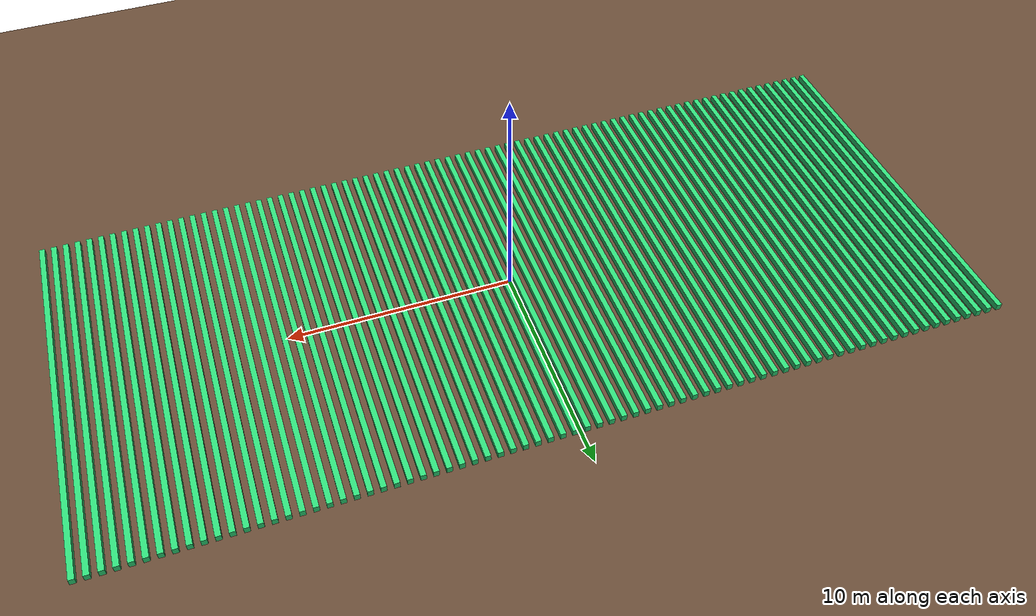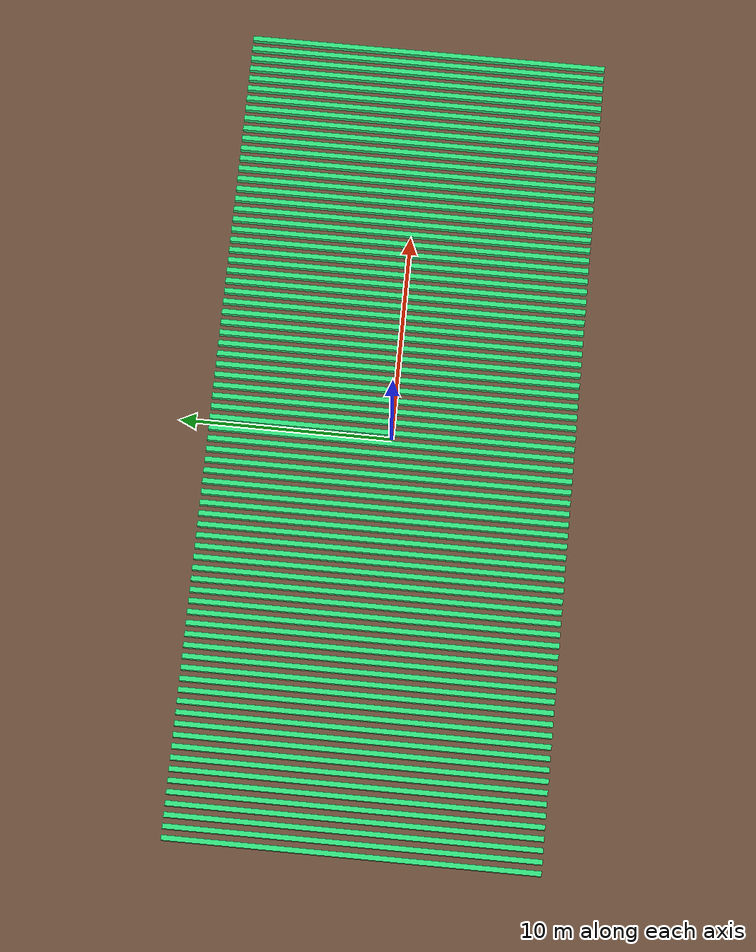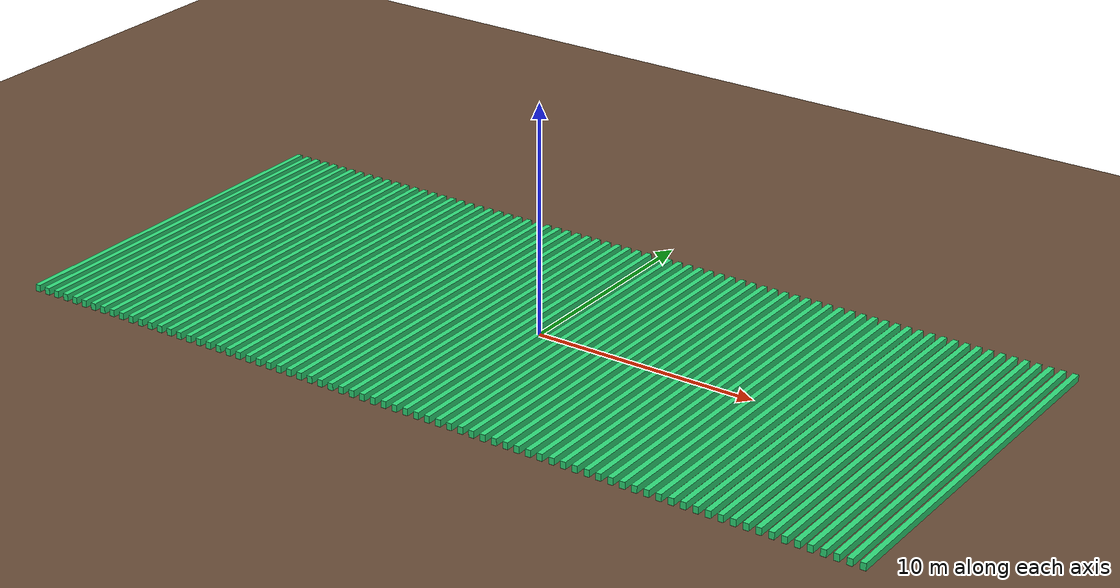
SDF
<sdf version="1.6">
 <world name="field">
  <light name="sun" type="directional">
   <pose>0 0 10 0 0 0</pose>
   <diffuse>0.8 0.8 0.8 1</diffuse>
   <specular>0.2 0.2 0.2 1</specular>
   <attenuation>
    <range>1000</range>
    <constant>0.9</constant>
    <linear>0.01</linear>
    <quadratic>0.001</quadratic>
   </attenuation>
   <direction>-0.5 0.1 -0.9</direction>
  </light>
  <gravity>0 0 -9.8</gravity>
  <magnetic_field>6e-06 2.3e-05 -4.2e-05</magnetic_field>
  <atmosphere type="adiabatic"/>
  <physics name="default_physics" default="0" type="ode">
   <max_step_size>0.001</max_step_size>
   <real_time_factor>1</real_time_factor>
   <real_time_update_rate>1000</real_time_update_rate>
  </physics>
  <scene><ambient>0.4 0.4 0.4 1</ambient><background>0.7 0.7 0.7 1</background><shadows>1</shadows></scene>
  <spherical_coordinates>
   <surface_model>EARTH_WGS84</surface_model>
   <latitude_deg>0</latitude_deg>
   <longitude_deg>0</longitude_deg>
   <elevation>0</elevation>
   <heading_deg>0</heading_deg>
  </spherical_coordinates>
  <model name="ground_plane">
   <static>1</static>
   <link name="ground_plane">
    <collision name="collision">
     <geometry><plane><normal>0 0 1</normal><size>42 35</size></plane></geometry>
     <surface><friction><ode><mu>100</mu><mu2>50</mu2></ode></friction></surface>
    </collision>
    <visual name="visual">
     <pose>0.00 0.00 0.02 0.00 0.00 0.00</pose>
     <cast_shadows>0</cast_shadows>
     <geometry><plane><normal>0 0 1</normal><size>42 35</size></plane></geometry>
     <material>
      <ambient>0.40 0.29 0.21 1.00</ambient>
      <diffuse>0.40 0.29 0.21 1.00</diffuse>
      <specular>0.01 0.01 0.01 1</specular>
      <emissive>0 0 0 1</emissive>
     </material>
    </visual>
   </link>
  </model>
  <model name="crop1">
   <pose>-19.50 0.00 0.15 0.00 0.00 0.00</pose>
   <link name="crop_line">
    <visual name="visual">
     <geometry><box><size>0.24 17.20 0.30</size></box></geometry>
     <material>
      <ambient>0.13 0.60 0.33 1.00</ambient>
      <diffuse>0.18 0.85 0.47 1.00</diffuse>
      <specular>0.01 0.01 0.01 1</specular>
      <emissive>0 0 0 1</emissive>
     </material>
    </visual>
    <collision name="collision">
     <geometry><box><size>0.24 17.20 0.30</size></box></geometry>
     <surface><contact><collide_without_contact>true</collide_without_contact></contact></surface>
    </collision>
   </link>
   <static>1</static>
  </model>
  <model name="crop2">
   <pose>-18.98 0.00 0.15 0.00 0.00 0.00</pose>
   <link name="crop_line">
    <visual name="visual">
     <geometry><box><size>0.24 17.20 0.30</size></box></geometry>
     <material>
      <ambient>0.13 0.60 0.33 1.00</ambient>
      <diffuse>0.18 0.85 0.47 1.00</diffuse>
      <specular>0.01 0.01 0.01 1</specular>
      <emissive>0 0 0 1</emissive>
     </material>
    </visual>
    <collision name="collision">
     <geometry><box><size>0.24 17.20 0.30</size></box></geometry>
     <surface><contact><collide_without_contact>true</collide_without_contact></contact></surface>
    </collision>
   </link>
   <static>1</static>
  </model>
  <model name="crop3">
   <pose>-18.46 0.00 0.15 0.00 0.00 0.00</pose>
   <link name="crop_line">
    <visual name="visual">
     <geometry><box><size>0.24 17.20 0.30</size></box></geometry>
     <material>
      <ambient>0.13 0.60 0.33 1.00</ambient>
      <diffuse>0.18 0.85 0.47 1.00</diffuse>
      <specular>0.01 0.01 0.01 1</specular>
      <emissive>0 0 0 1</emissive>
     </material>
    </visual>
    <collision name="collision">
     <geometry><box><size>0.24 17.20 0.30</size></box></geometry>
     <surface><contact><collide_without_contact>true</collide_without_contact></contact></surface>
    </collision>
   </link>
   <static>1</static>
  </model>
  <model name="crop4">
   <pose>-17.94 0.00 0.15 0.00 0.00 0.00</pose>
   <link name="crop_line">
    <visual name="visual">
     <geometry><box><size>0.24 17.20 0.30</size></box></geometry>
     <material>
      <ambient>0.13 0.60 0.33 1.00</ambient>
      <diffuse>0.18 0.85 0.47 1.00</diffuse>
      <specular>0.01 0.01 0.01 1</specular>
      <emissive>0 0 0 1</emissive>
     </material>
    </visual>
    <collision name="collision">
     <geometry><box><size>0.24 17.20 0.30</size></box></geometry>
     <surface><contact><collide_without_contact>true</collide_without_contact></contact></surface>
    </collision>
   </link>
   <static>1</static>
  </model>
  <model name="crop5">
   <pose>-17.42 0.00 0.15 0.00 0.00 0.00</pose>
   <link name="crop_line">
    <visual name="visual">
     <geometry><box><size>0.24 17.20 0.30</size></box></geometry>
     <material>
      <ambient>0.13 0.60 0.33 1.00</ambient>
      <diffuse>0.18 0.85 0.47 1.00</diffuse>
      <specular>0.01 0.01 0.01 1</specular>
      <emissive>0 0 0 1</emissive>
     </material>
    </visual>
    <collision name="collision">
     <geometry><box><size>0.24 17.20 0.30</size></box></geometry>
     <surface><contact><collide_without_contact>true</collide_without_contact></contact></surface>
    </collision>
   </link>
   <static>1</static>
  </model>
  <model name="crop6">
   <pose>-16.90 0.00 0.15 0.00 0.00 0.00</pose>
   <link name="crop_line">
    <visual name="visual">
     <geometry><box><size>0.24 17.20 0.30</size></box></geometry>
     <material>
      <ambient>0.13 0.60 0.33 1.00</ambient>
      <diffuse>0.18 0.85 0.47 1.00</diffuse>
      <specular>0.01 0.01 0.01 1</specular>
      <emissive>0 0 0 1</emissive>
     </material>
    </visual>
    <collision name="collision">
     <geometry><box><size>0.24 17.20 0.30</size></box></geometry>
     <surface><contact><collide_without_contact>true</collide_without_contact></contact></surface>
    </collision>
   </link>
   <static>1</static>
  </model>
  <model name="crop7">
   <pose>-16.38 0.00 0.15 0.00 0.00 0.00</pose>
   <link name="crop_line">
    <visual name="visual">
     <geometry><box><size>0.24 17.20 0.30</size></box></geometry>
     <material>
      <ambient>0.13 0.60 0.33 1.00</ambient>
      <diffuse>0.18 0.85 0.47 1.00</diffuse>
      <specular>0.01 0.01 0.01 1</specular>
      <emissive>0 0 0 1</emissive>
     </material>
    </visual>
    <collision name="collision">
     <geometry><box><size>0.24 17.20 0.30</size></box></geometry>
     <surface><contact><collide_without_contact>true</collide_without_contact></contact></surface>
    </collision>
   </link>
   <static>1</static>
  </model>
  <model name="crop8">
   <pose>-15.86 0.00 0.15 0.00 0.00 0.00</pose>
   <link name="crop_line">
    <visual name="visual">
     <geometry><box><size>0.24 17.20 0.30</size></box></geometry>
     <material>
      <ambient>0.13 0.60 0.33 1.00</ambient>
      <diffuse>0.18 0.85 0.47 1.00</diffuse>
      <specular>0.01 0.01 0.01 1</specular>
      <emissive>0 0 0 1</emissive>
     </material>
    </visual>
    <collision name="collision">
     <geometry><box><size>0.24 17.20 0.30</size></box></geometry>
     <surface><contact><collide_without_contact>true</collide_without_contact></contact></surface>
    </collision>
   </link>
   <static>1</static>
  </model>
  <model name="crop9">
   <pose>-15.34 0.00 0.15 0.00 0.00 0.00</pose>
   <link name="crop_line">
    <visual name="visual">
     <geometry><box><size>0.24 17.20 0.30</size></box></geometry>
     <material>
      <ambient>0.13 0.60 0.33 1.00</ambient>
      <diffuse>0.18 0.85 0.47 1.00</diffuse>
      <specular>0.01 0.01 0.01 1</specular>
      <emissive>0 0 0 1</emissive>
     </material>
    </visual>
    <collision name="collision">
     <geometry><box><size>0.24 17.20 0.30</size></box></geometry>
     <surface><contact><collide_without_contact>true</collide_without_contact></contact></surface>
    </collision>
   </link>
   <static>1</static>
  </model>
  <model name="crop10">
   <pose>-14.82 0.00 0.15 0.00 0.00 0.00</pose>
   <link name="crop_line">
    <visual name="visual">
     <geometry><box><size>0.24 17.20 0.30</size></box></geometry>
     <material>
      <ambient>0.13 0.60 0.33 1.00</ambient>
      <diffuse>0.18 0.85 0.47 1.00</diffuse>
      <specular>0.01 0.01 0.01 1</specular>
      <emissive>0 0 0 1</emissive>
     </material>
    </visual>
    <collision name="collision">
     <geometry><box><size>0.24 17.20 0.30</size></box></geometry>
     <surface><contact><collide_without_contact>true</collide_without_contact></contact></surface>
    </collision>
   </link>
   <static>1</static>
  </model>
  <model name="crop11">
   <pose>-14.30 0.00 0.15 0.00 0.00 0.00</pose>
   <link name="crop_line">
    <visual name="visual">
     <geometry><box><size>0.24 17.20 0.30</size></box></geometry>
     <material>
      <ambient>0.13 0.60 0.33 1.00</ambient>
      <diffuse>0.18 0.85 0.47 1.00</diffuse>
      <specular>0.01 0.01 0.01 1</specular>
      <emissive>0 0 0 1</emissive>
     </material>
    </visual>
    <collision name="collision">
     <geometry><box><size>0.24 17.20 0.30</size></box></geometry>
     <surface><contact><collide_without_contact>true</collide_without_contact></contact></surface>
    </collision>
   </link>
   <static>1</static>
  </model>
  <model name="crop12">
   <pose>-13.78 0.00 0.15 0.00 0.00 0.00</pose>
   <link name="crop_line">
    <visual name="visual">
     <geometry><box><size>0.24 17.20 0.30</size></box></geometry>
     <material>
      <ambient>0.13 0.60 0.33 1.00</ambient>
      <diffuse>0.18 0.85 0.47 1.00</diffuse>
      <specular>0.01 0.01 0.01 1</specular>
      <emissive>0 0 0 1</emissive>
     </material>
    </visual>
    <collision name="collision">
     <geometry><box><size>0.24 17.20 0.30</size></box></geometry>
     <surface><contact><collide_without_contact>true</collide_without_contact></contact></surface>
    </collision>
   </link>
   <static>1</static>
  </model>
  <model name="crop13">
   <pose>-13.26 0.00 0.15 0.00 0.00 0.00</pose>
   <link name="crop_line">
    <visual name="visual">
     <geometry><box><size>0.24 17.20 0.30</size></box></geometry>
     <material>
      <ambient>0.13 0.60 0.33 1.00</ambient>
      <diffuse>0.18 0.85 0.47 1.00</diffuse>
      <specular>0.01 0.01 0.01 1</specular>
      <emissive>0 0 0 1</emissive>
     </material>
    </visual>
    <collision name="collision">
     <geometry><box><size>0.24 17.20 0.30</size></box></geometry>
     <surface><contact><collide_without_contact>true</collide_without_contact></contact></surface>
    </collision>
   </link>
   <static>1</static>
  </model>
  <model name="crop14">
   <pose>-12.74 0.00 0.15 0.00 0.00 0.00</pose>
   <link name="crop_line">
    <visual name="visual">
     <geometry><box><size>0.24 17.20 0.30</size></box></geometry>
     <material>
      <ambient>0.13 0.60 0.33 1.00</ambient>
      <diffuse>0.18 0.85 0.47 1.00</diffuse>
      <specular>0.01 0.01 0.01 1</specular>
      <emissive>0 0 0 1</emissive>
     </material>
    </visual>
    <collision name="collision">
     <geometry><box><size>0.24 17.20 0.30</size></box></geometry>
     <surface><contact><collide_without_contact>true</collide_without_contact></contact></surface>
    </collision>
   </link>
   <static>1</static>
  </model>
  <model name="crop15">
   <pose>-12.22 0.00 0.15 0.00 0.00 0.00</pose>
   <link name="crop_line">
    <visual name="visual">
     <geometry><box><size>0.24 17.20 0.30</size></box></geometry>
     <material>
      <ambient>0.13 0.60 0.33 1.00</ambient>
      <diffuse>0.18 0.85 0.47 1.00</diffuse>
      <specular>0.01 0.01 0.01 1</specular>
      <emissive>0 0 0 1</emissive>
     </material>
    </visual>
    <collision name="collision">
     <geometry><box><size>0.24 17.20 0.30</size></box></geometry>
     <surface><contact><collide_without_contact>true</collide_without_contact></contact></surface>
    </collision>
   </link>
   <static>1</static>
  </model>
  <model name="crop16">
   <pose>-11.70 0.00 0.15 0.00 0.00 0.00</pose>
   <link name="crop_line">
    <visual name="visual">
     <geometry><box><size>0.24 17.20 0.30</size></box></geometry>
     <material>
      <ambient>0.13 0.60 0.33 1.00</ambient>
      <diffuse>0.18 0.85 0.47 1.00</diffuse>
      <specular>0.01 0.01 0.01 1</specular>
      <emissive>0 0 0 1</emissive>
     </material>
    </visual>
    <collision name="collision">
     <geometry><box><size>0.24 17.20 0.30</size></box></geometry>
     <surface><contact><collide_without_contact>true</collide_without_contact></contact></surface>
    </collision>
   </link>
   <static>1</static>
  </model>
  <model name="crop17">
   <pose>-11.18 0.00 0.15 0.00 0.00 0.00</pose>
   <link name="crop_line">
    <visual name="visual">
     <geometry><box><size>0.24 17.20 0.30</size></box></geometry>
     <material>
      <ambient>0.13 0.60 0.33 1.00</ambient>
      <diffuse>0.18 0.85 0.47 1.00</diffuse>
      <specular>0.01 0.01 0.01 1</specular>
      <emissive>0 0 0 1</emissive>
     </material>
    </visual>
    <collision name="collision">
     <geometry><box><size>0.24 17.20 0.30</size></box></geometry>
     <surface><contact><collide_without_contact>true</collide_without_contact></contact></surface>
    </collision>
   </link>
   <static>1</static>
  </model>
  <model name="crop18">
   <pose>-10.66 0.00 0.15 0.00 0.00 0.00</pose>
   <link name="crop_line">
    <visual name="visual">
     <geometry><box><size>0.24 17.20 0.30</size></box></geometry>
     <material>
      <ambient>0.13 0.60 0.33 1.00</ambient>
      <diffuse>0.18 0.85 0.47 1.00</diffuse>
      <specular>0.01 0.01 0.01 1</specular>
      <emissive>0 0 0 1</emissive>
     </material>
    </visual>
    <collision name="collision">
     <geometry><box><size>0.24 17.20 0.30</size></box></geometry>
     <surface><contact><collide_without_contact>true</collide_without_contact></contact></surface>
    </collision>
   </link>
   <static>1</static>
  </model>
  <model name="crop19">
   <pose>-10.14 0.00 0.15 0.00 0.00 0.00</pose>
   <link name="crop_line">
    <visual name="visual">
     <geometry><box><size>0.24 17.20 0.30</size></box></geometry>
     <material>
      <ambient>0.13 0.60 0.33 1.00</ambient>
      <diffuse>0.18 0.85 0.47 1.00</diffuse>
      <specular>0.01 0.01 0.01 1</specular>
      <emissive>0 0 0 1</emissive>
     </material>
    </visual>
    <collision name="collision">
     <geometry><box><size>0.24 17.20 0.30</size></box></geometry>
     <surface><contact><collide_without_contact>true</collide_without_contact></contact></surface>
    </collision>
   </link>
   <static>1</static>
  </model>
  <model name="crop20">
   <pose>-9.62 0.00 0.15 0.00 0.00 0.00</pose>
   <link name="crop_line">
    <visual name="visual">
     <geometry><box><size>0.24 17.20 0.30</size></box></geometry>
     <material>
      <ambient>0.13 0.60 0.33 1.00</ambient>
      <diffuse>0.18 0.85 0.47 1.00</diffuse>
      <specular>0.01 0.01 0.01 1</specular>
      <emissive>0 0 0 1</emissive>
     </material>
    </visual>
    <collision name="collision">
     <geometry><box><size>0.24 17.20 0.30</size></box></geometry>
     <surface><contact><collide_without_contact>true</collide_without_contact></contact></surface>
    </collision>
   </link>
   <static>1</static>
  </model>
  <model name="crop21">
   <pose>-9.10 0.00 0.15 0.00 0.00 0.00</pose>
   <link name="crop_line">
    <visual name="visual">
     <geometry><box><size>0.24 17.20 0.30</size></box></geometry>
     <material>
      <ambient>0.13 0.60 0.33 1.00</ambient>
      <diffuse>0.18 0.85 0.47 1.00</diffuse>
      <specular>0.01 0.01 0.01 1</specular>
      <emissive>0 0 0 1</emissive>
     </material>
    </visual>
    <collision name="collision">
     <geometry><box><size>0.24 17.20 0.30</size></box></geometry>
     <surface><contact><collide_without_contact>true</collide_without_contact></contact></surface>
    </collision>
   </link>
   <static>1</static>
  </model>
  <model name="crop22">
   <pose>-8.58 0.00 0.15 0.00 0.00 0.00</pose>
   <link name="crop_line">
    <visual name="visual">
     <geometry><box><size>0.24 17.20 0.30</size></box></geometry>
     <material>
      <ambient>0.13 0.60 0.33 1.00</ambient>
      <diffuse>0.18 0.85 0.47 1.00</diffuse>
      <specular>0.01 0.01 0.01 1</specular>
      <emissive>0 0 0 1</emissive>
     </material>
    </visual>
    <collision name="collision">
     <geometry><box><size>0.24 17.20 0.30</size></box></geometry>
     <surface><contact><collide_without_contact>true</collide_without_contact></contact></surface>
    </collision>
   </link>
   <static>1</static>
  </model>
  <model name="crop23">
   <pose>-8.06 0.00 0.15 0.00 0.00 0.00</pose>
   <link name="crop_line">
    <visual name="visual">
     <geometry><box><size>0.24 17.20 0.30</size></box></geometry>
     <material>
      <ambient>0.13 0.60 0.33 1.00</ambient>
      <diffuse>0.18 0.85 0.47 1.00</diffuse>
      <specular>0.01 0.01 0.01 1</specular>
      <emissive>0 0 0 1</emissive>
     </material>
    </visual>
    <collision name="collision">
     <geometry><box><size>0.24 17.20 0.30</size></box></geometry>
     <surface><contact><collide_without_contact>true</collide_without_contact></contact></surface>
    </collision>
   </link>
   <static>1</static>
  </model>
  <model name="crop24">
   <pose>-7.54 0.00 0.15 0.00 0.00 0.00</pose>
   <link name="crop_line">
    <visual name="visual">
     <geometry><box><size>0.24 17.20 0.30</size></box></geometry>
     <material>
      <ambient>0.13 0.60 0.33 1.00</ambient>
      <diffuse>0.18 0.85 0.47 1.00</diffuse>
      <specular>0.01 0.01 0.01 1</specular>
      <emissive>0 0 0 1</emissive>
     </material>
    </visual>
    <collision name="collision">
     <geometry><box><size>0.24 17.20 0.30</size></box></geometry>
     <surface><contact><collide_without_contact>true</collide_without_contact></contact></surface>
    </collision>
   </link>
   <static>1</static>
  </model>
  <model name="crop25">
   <pose>-7.02 0.00 0.15 0.00 0.00 0.00</pose>
   <link name="crop_line">
    <visual name="visual">
     <geometry><box><size>0.24 17.20 0.30</size></box></geometry>
     <material>
      <ambient>0.13 0.60 0.33 1.00</ambient>
      <diffuse>0.18 0.85 0.47 1.00</diffuse>
      <specular>0.01 0.01 0.01 1</specular>
      <emissive>0 0 0 1</emissive>
     </material>
    </visual>
    <collision name="collision">
     <geometry><box><size>0.24 17.20 0.30</size></box></geometry>
     <surface><contact><collide_without_contact>true</collide_without_contact></contact></surface>
    </collision>
   </link>
   <static>1</static>
  </model>
  <model name="crop26">
   <pose>-6.50 0.00 0.15 0.00 0.00 0.00</pose>
   <link name="crop_line">
    <visual name="visual">
     <geometry><box><size>0.24 17.20 0.30</size></box></geometry>
     <material>
      <ambient>0.13 0.60 0.33 1.00</ambient>
      <diffuse>0.18 0.85 0.47 1.00</diffuse>
      <specular>0.01 0.01 0.01 1</specular>
      <emissive>0 0 0 1</emissive>
     </material>
    </visual>
    <collision name="collision">
     <geometry><box><size>0.24 17.20 0.30</size></box></geometry>
     <surface><contact><collide_without_contact>true</collide_without_contact></contact></surface>
    </collision>
   </link>
   <static>1</static>
  </model>
  <model name="crop27">
   <pose>-5.98 0.00 0.15 0.00 0.00 0.00</pose>
   <link name="crop_line">
    <visual name="visual">
     <geometry><box><size>0.24 17.20 0.30</size></box></geometry>
     <material>
      <ambient>0.13 0.60 0.33 1.00</ambient>
      <diffuse>0.18 0.85 0.47 1.00</diffuse>
      <specular>0.01 0.01 0.01 1</specular>
      <emissive>0 0 0 1</emissive>
     </material>
    </visual>
    <collision name="collision">
     <geometry><box><size>0.24 17.20 0.30</size></box></geometry>
     <surface><contact><collide_without_contact>true</collide_without_contact></contact></surface>
    </collision>
   </link>
   <static>1</static>
  </model>
  <model name="crop28">
   <pose>-5.46 0.00 0.15 0.00 0.00 0.00</pose>
   <link name="crop_line">
    <visual name="visual">
     <geometry><box><size>0.24 17.20 0.30</size></box></geometry>
     <material>
      <ambient>0.13 0.60 0.33 1.00</ambient>
      <diffuse>0.18 0.85 0.47 1.00</diffuse>
      <specular>0.01 0.01 0.01 1</specular>
      <emissive>0 0 0 1</emissive>
     </material>
    </visual>
    <collision name="collision">
     <geometry><box><size>0.24 17.20 0.30</size></box></geometry>
     <surface><contact><collide_without_contact>true</collide_without_contact></contact></surface>
    </collision>
   </link>
   <static>1</static>
  </model>
  <model name="crop29">
   <pose>-4.94 0.00 0.15 0.00 0.00 0.00</pose>
   <link name="crop_line">
    <visual name="visual">
     <geometry><box><size>0.24 17.20 0.30</size></box></geometry>
     <material>
      <ambient>0.13 0.60 0.33 1.00</ambient>
      <diffuse>0.18 0.85 0.47 1.00</diffuse>
      <specular>0.01 0.01 0.01 1</specular>
      <emissive>0 0 0 1</emissive>
     </material>
    </visual>
    <collision name="collision">
     <geometry><box><size>0.24 17.20 0.30</size></box></geometry>
     <surface><contact><collide_without_contact>true</collide_without_contact></contact></surface>
    </collision>
   </link>
   <static>1</static>
  </model>
  <model name="crop30">
   <pose>-4.42 0.00 0.15 0.00 0.00 0.00</pose>
   <link name="crop_line">
    <visual name="visual">
     <geometry><box><size>0.24 17.20 0.30</size></box></geometry>
     <material>
      <ambient>0.13 0.60 0.33 1.00</ambient>
      <diffuse>0.18 0.85 0.47 1.00</diffuse>
      <specular>0.01 0.01 0.01 1</specular>
      <emissive>0 0 0 1</emissive>
     </material>
    </visual>
    <collision name="collision">
     <geometry><box><size>0.24 17.20 0.30</size></box></geometry>
     <surface><contact><collide_without_contact>true</collide_without_contact></contact></surface>
    </collision>
   </link>
   <static>1</static>
  </model>
  <model name="crop31">
   <pose>-3.90 0.00 0.15 0.00 0.00 0.00</pose>
   <link name="crop_line">
    <visual name="visual">
     <geometry><box><size>0.24 17.20 0.30</size></box></geometry>
     <material>
      <ambient>0.13 0.60 0.33 1.00</ambient>
      <diffuse>0.18 0.85 0.47 1.00</diffuse>
      <specular>0.01 0.01 0.01 1</specular>
      <emissive>0 0 0 1</emissive>
     </material>
    </visual>
    <collision name="collision">
     <geometry><box><size>0.24 17.20 0.30</size></box></geometry>
     <surface><contact><collide_without_contact>true</collide_without_contact></contact></surface>
    </collision>
   </link>
   <static>1</static>
  </model>
  <model name="crop32">
   <pose>-3.38 0.00 0.15 0.00 0.00 0.00</pose>
   <link name="crop_line">
    <visual name="visual">
     <geometry><box><size>0.24 17.20 0.30</size></box></geometry>
     <material>
      <ambient>0.13 0.60 0.33 1.00</ambient>
      <diffuse>0.18 0.85 0.47 1.00</diffuse>
      <specular>0.01 0.01 0.01 1</specular>
      <emissive>0 0 0 1</emissive>
     </material>
    </visual>
    <collision name="collision">
     <geometry><box><size>0.24 17.20 0.30</size></box></geometry>
     <surface><contact><collide_without_contact>true</collide_without_contact></contact></surface>
    </collision>
   </link>
   <static>1</static>
  </model>
  <model name="crop33">
   <pose>-2.86 0.00 0.15 0.00 0.00 0.00</pose>
   <link name="crop_line">
    <visual name="visual">
     <geometry><box><size>0.24 17.20 0.30</size></box></geometry>
     <material>
      <ambient>0.13 0.60 0.33 1.00</ambient>
      <diffuse>0.18 0.85 0.47 1.00</diffuse>
      <specular>0.01 0.01 0.01 1</specular>
      <emissive>0 0 0 1</emissive>
     </material>
    </visual>
    <collision name="collision">
     <geometry><box><size>0.24 17.20 0.30</size></box></geometry>
     <surface><contact><collide_without_contact>true</collide_without_contact></contact></surface>
    </collision>
   </link>
   <static>1</static>
  </model>
  <model name="crop34">
   <pose>-2.34 0.00 0.15 0.00 0.00 0.00</pose>
   <link name="crop_line">
    <visual name="visual">
     <geometry><box><size>0.24 17.20 0.30</size></box></geometry>
     <material>
      <ambient>0.13 0.60 0.33 1.00</ambient>
      <diffuse>0.18 0.85 0.47 1.00</diffuse>
      <specular>0.01 0.01 0.01 1</specular>
      <emissive>0 0 0 1</emissive>
     </material>
    </visual>
    <collision name="collision">
     <geometry><box><size>0.24 17.20 0.30</size></box></geometry>
     <surface><contact><collide_without_contact>true</collide_without_contact></contact></surface>
    </collision>
   </link>
   <static>1</static>
  </model>
  <model name="crop35">
   <pose>-1.82 0.00 0.15 0.00 0.00 0.00</pose>
   <link name="crop_line">
    <visual name="visual">
     <geometry><box><size>0.24 17.20 0.30</size></box></geometry>
     <material>
      <ambient>0.13 0.60 0.33 1.00</ambient>
      <diffuse>0.18 0.85 0.47 1.00</diffuse>
      <specular>0.01 0.01 0.01 1</specular>
      <emissive>0 0 0 1</emissive>
     </material>
    </visual>
    <collision name="collision">
     <geometry><box><size>0.24 17.20 0.30</size></box></geometry>
     <surface><contact><collide_without_contact>true</collide_without_contact></contact></surface>
    </collision>
   </link>
   <static>1</static>
  </model>
  <model name="crop36">
   <pose>-1.30 0.00 0.15 0.00 0.00 0.00</pose>
   <link name="crop_line">
    <visual name="visual">
     <geometry><box><size>0.24 17.20 0.30</size></box></geometry>
     <material>
      <ambient>0.13 0.60 0.33 1.00</ambient>
      <diffuse>0.18 0.85 0.47 1.00</diffuse>
      <specular>0.01 0.01 0.01 1</specular>
      <emissive>0 0 0 1</emissive>
     </material>
    </visual>
    <collision name="collision">
     <geometry><box><size>0.24 17.20 0.30</size></box></geometry>
     <surface><contact><collide_without_contact>true</collide_without_contact></contact></surface>
    </collision>
   </link>
   <static>1</static>
  </model>
  <model name="crop37">
   <pose>-0.78 0.00 0.15 0.00 0.00 0.00</pose>
   <link name="crop_line">
    <visual name="visual">
     <geometry><box><size>0.24 17.20 0.30</size></box></geometry>
     <material>
      <ambient>0.13 0.60 0.33 1.00</ambient>
      <diffuse>0.18 0.85 0.47 1.00</diffuse>
      <specular>0.01 0.01 0.01 1</specular>
      <emissive>0 0 0 1</emissive>
     </material>
    </visual>
    <collision name="collision">
     <geometry><box><size>0.24 17.20 0.30</size></box></geometry>
     <surface><contact><collide_without_contact>true</collide_without_contact></contact></surface>
    </collision>
   </link>
   <static>1</static>
  </model>
  <model name="crop38">
   <pose>-0.26 0.00 0.15 0.00 0.00 0.00</pose>
   <link name="crop_line">
    <visual name="visual">
     <geometry><box><size>0.24 17.20 0.30</size></box></geometry>
     <material>
      <ambient>0.13 0.60 0.33 1.00</ambient>
      <diffuse>0.18 0.85 0.47 1.00</diffuse>
      <specular>0.01 0.01 0.01 1</specular>
      <emissive>0 0 0 1</emissive>
     </material>
    </visual>
    <collision name="collision">
     <geometry><box><size>0.24 17.20 0.30</size></box></geometry>
     <surface><contact><collide_without_contact>true</collide_without_contact></contact></surface>
    </collision>
   </link>
   <static>1</static>
  </model>
  <model name="crop39">
   <pose>0.26 0.00 0.15 0.00 0.00 0.00</pose>
   <link name="crop_line">
    <visual name="visual">
     <geometry><box><size>0.24 17.20 0.30</size></box></geometry>
     <material>
      <ambient>0.13 0.60 0.33 1.00</ambient>
      <diffuse>0.18 0.85 0.47 1.00</diffuse>
      <specular>0.01 0.01 0.01 1</specular>
      <emissive>0 0 0 1</emissive>
     </material>
    </visual>
    <collision name="collision">
     <geometry><box><size>0.24 17.20 0.30</size></box></geometry>
     <surface><contact><collide_without_contact>true</collide_without_contact></contact></surface>
    </collision>
   </link>
   <static>1</static>
  </model>
  <model name="crop40">
   <pose>0.78 0.00 0.15 0.00 0.00 0.00</pose>
   <link name="crop_line">
    <visual name="visual">
     <geometry><box><size>0.24 17.20 0.30</size></box></geometry>
     <material>
      <ambient>0.13 0.60 0.33 1.00</ambient>
      <diffuse>0.18 0.85 0.47 1.00</diffuse>
      <specular>0.01 0.01 0.01 1</specular>
      <emissive>0 0 0 1</emissive>
     </material>
    </visual>
    <collision name="collision">
     <geometry><box><size>0.24 17.20 0.30</size></box></geometry>
     <surface><contact><collide_without_contact>true</collide_without_contact></contact></surface>
    </collision>
   </link>
   <static>1</static>
  </model>
  <model name="crop41">
   <pose>1.30 0.00 0.15 0.00 0.00 0.00</pose>
   <link name="crop_line">
    <visual name="visual">
     <geometry><box><size>0.24 17.20 0.30</size></box></geometry>
     <material>
      <ambient>0.13 0.60 0.33 1.00</ambient>
      <diffuse>0.18 0.85 0.47 1.00</diffuse>
      <specular>0.01 0.01 0.01 1</specular>
      <emissive>0 0 0 1</emissive>
     </material>
    </visual>
    <collision name="collision">
     <geometry><box><size>0.24 17.20 0.30</size></box></geometry>
     <surface><contact><collide_without_contact>true</collide_without_contact></contact></surface>
    </collision>
   </link>
   <static>1</static>
  </model>
  <model name="crop42">
   <pose>1.82 0.00 0.15 0.00 0.00 0.00</pose>
   <link name="crop_line">
    <visual name="visual">
     <geometry><box><size>0.24 17.20 0.30</size></box></geometry>
     <material>
      <ambient>0.13 0.60 0.33 1.00</ambient>
      <diffuse>0.18 0.85 0.47 1.00</diffuse>
      <specular>0.01 0.01 0.01 1</specular>
      <emissive>0 0 0 1</emissive>
     </material>
    </visual>
    <collision name="collision">
     <geometry><box><size>0.24 17.20 0.30</size></box></geometry>
     <surface><contact><collide_without_contact>true</collide_without_contact></contact></surface>
    </collision>
   </link>
   <static>1</static>
  </model>
  <model name="crop43">
   <pose>2.34 0.00 0.15 0.00 0.00 0.00</pose>
   <link name="crop_line">
    <visual name="visual">
     <geometry><box><size>0.24 17.20 0.30</size></box></geometry>
     <material>
      <ambient>0.13 0.60 0.33 1.00</ambient>
      <diffuse>0.18 0.85 0.47 1.00</diffuse>
      <specular>0.01 0.01 0.01 1</specular>
      <emissive>0 0 0 1</emissive>
     </material>
    </visual>
    <collision name="collision">
     <geometry><box><size>0.24 17.20 0.30</size></box></geometry>
     <surface><contact><collide_without_contact>true</collide_without_contact></contact></surface>
    </collision>
   </link>
   <static>1</static>
  </model>
  <model name="crop44">
   <pose>2.86 0.00 0.15 0.00 0.00 0.00</pose>
   <link name="crop_line">
    <visual name="visual">
     <geometry><box><size>0.24 17.20 0.30</size></box></geometry>
     <material>
      <ambient>0.13 0.60 0.33 1.00</ambient>
      <diffuse>0.18 0.85 0.47 1.00</diffuse>
      <specular>0.01 0.01 0.01 1</specular>
      <emissive>0 0 0 1</emissive>
     </material>
    </visual>
    <collision name="collision">
     <geometry><box><size>0.24 17.20 0.30</size></box></geometry>
     <surface><contact><collide_without_contact>true</collide_without_contact></contact></surface>
    </collision>
   </link>
   <static>1</static>
  </model>
  <model name="crop45">
   <pose>3.38 0.00 0.15 0.00 0.00 0.00</pose>
   <link name="crop_line">
    <visual name="visual">
     <geometry><box><size>0.24 17.20 0.30</size></box></geometry>
     <material>
      <ambient>0.13 0.60 0.33 1.00</ambient>
      <diffuse>0.18 0.85 0.47 1.00</diffuse>
      <specular>0.01 0.01 0.01 1</specular>
      <emissive>0 0 0 1</emissive>
     </material>
    </visual>
    <collision name="collision">
     <geometry><box><size>0.24 17.20 0.30</size></box></geometry>
     <surface><contact><collide_without_contact>true</collide_without_contact></contact></surface>
    </collision>
   </link>
   <static>1</static>
  </model>
  <model name="crop46">
   <pose>3.90 0.00 0.15 0.00 0.00 0.00</pose>
   <link name="crop_line">
    <visual name="visual">
     <geometry><box><size>0.24 17.20 0.30</size></box></geometry>
     <material>
      <ambient>0.13 0.60 0.33 1.00</ambient>
      <diffuse>0.18 0.85 0.47 1.00</diffuse>
      <specular>0.01 0.01 0.01 1</specular>
      <emissive>0 0 0 1</emissive>
     </material>
    </visual>
    <collision name="collision">
     <geometry><box><size>0.24 17.20 0.30</size></box></geometry>
     <surface><contact><collide_without_contact>true</collide_without_contact></contact></surface>
    </collision>
   </link>
   <static>1</static>
  </model>
  <model name="crop47">
   <pose>4.42 0.00 0.15 0.00 0.00 0.00</pose>
   <link name="crop_line">
    <visual name="visual">
     <geometry><box><size>0.24 17.20 0.30</size></box></geometry>
     <material>
      <ambient>0.13 0.60 0.33 1.00</ambient>
      <diffuse>0.18 0.85 0.47 1.00</diffuse>
      <specular>0.01 0.01 0.01 1</specular>
      <emissive>0 0 0 1</emissive>
     </material>
    </visual>
    <collision name="collision">
     <geometry><box><size>0.24 17.20 0.30</size></box></geometry>
     <surface><contact><collide_without_contact>true</collide_without_contact></contact></surface>
    </collision>
   </link>
   <static>1</static>
  </model>
  <model name="crop48">
   <pose>4.94 0.00 0.15 0.00 0.00 0.00</pose>
   <link name="crop_line">
    <visual name="visual">
     <geometry><box><size>0.24 17.20 0.30</size></box></geometry>
     <material>
      <ambient>0.13 0.60 0.33 1.00</ambient>
      <diffuse>0.18 0.85 0.47 1.00</diffuse>
      <specular>0.01 0.01 0.01 1</specular>
      <emissive>0 0 0 1</emissive>
     </material>
    </visual>
    <collision name="collision">
     <geometry><box><size>0.24 17.20 0.30</size></box></geometry>
     <surface><contact><collide_without_contact>true</collide_without_contact></contact></surface>
    </collision>
   </link>
   <static>1</static>
  </model>
  <model name="crop49">
   <pose>5.46 0.00 0.15 0.00 0.00 0.00</pose>
   <link name="crop_line">
    <visual name="visual">
     <geometry><box><size>0.24 17.20 0.30</size></box></geometry>
     <material>
      <ambient>0.13 0.60 0.33 1.00</ambient>
      <diffuse>0.18 0.85 0.47 1.00</diffuse>
      <specular>0.01 0.01 0.01 1</specular>
      <emissive>0 0 0 1</emissive>
     </material>
    </visual>
    <collision name="collision">
     <geometry><box><size>0.24 17.20 0.30</size></box></geometry>
     <surface><contact><collide_without_contact>true</collide_without_contact></contact></surface>
    </collision>
   </link>
   <static>1</static>
  </model>
  <model name="crop50">
   <pose>5.98 0.00 0.15 0.00 0.00 0.00</pose>
   <link name="crop_line">
    <visual name="visual">
     <geometry><box><size>0.24 17.20 0.30</size></box></geometry>
     <material>
      <ambient>0.13 0.60 0.33 1.00</ambient>
      <diffuse>0.18 0.85 0.47 1.00</diffuse>
      <specular>0.01 0.01 0.01 1</specular>
      <emissive>0 0 0 1</emissive>
     </material>
    </visual>
    <collision name="collision">
     <geometry><box><size>0.24 17.20 0.30</size></box></geometry>
     <surface><contact><collide_without_contact>true</collide_without_contact></contact></surface>
    </collision>
   </link>
   <static>1</static>
  </model>
  <model name="crop51">
   <pose>6.50 0.00 0.15 0.00 0.00 0.00</pose>
   <link name="crop_line">
    <visual name="visual">
     <geometry><box><size>0.24 17.20 0.30</size></box></geometry>
     <material>
      <ambient>0.13 0.60 0.33 1.00</ambient>
      <diffuse>0.18 0.85 0.47 1.00</diffuse>
      <specular>0.01 0.01 0.01 1</specular>
      <emissive>0 0 0 1</emissive>
     </material>
    </visual>
    <collision name="collision">
     <geometry><box><size>0.24 17.20 0.30</size></box></geometry>
     <surface><contact><collide_without_contact>true</collide_without_contact></contact></surface>
    </collision>
   </link>
   <static>1</static>
  </model>
  <model name="crop52">
   <pose>7.02 0.00 0.15 0.00 0.00 0.00</pose>
   <link name="crop_line">
    <visual name="visual">
     <geometry><box><size>0.24 17.20 0.30</size></box></geometry>
     <material>
      <ambient>0.13 0.60 0.33 1.00</ambient>
      <diffuse>0.18 0.85 0.47 1.00</diffuse>
      <specular>0.01 0.01 0.01 1</specular>
      <emissive>0 0 0 1</emissive>
     </material>
    </visual>
    <collision name="collision">
     <geometry><box><size>0.24 17.20 0.30</size></box></geometry>
     <surface><contact><collide_without_contact>true</collide_without_contact></contact></surface>
    </collision>
   </link>
   <static>1</static>
  </model>
  <model name="crop53">
   <pose>7.54 0.00 0.15 0.00 0.00 0.00</pose>
   <link name="crop_line">
    <visual name="visual">
     <geometry><box><size>0.24 17.20 0.30</size></box></geometry>
     <material>
      <ambient>0.13 0.60 0.33 1.00</ambient>
      <diffuse>0.18 0.85 0.47 1.00</diffuse>
      <specular>0.01 0.01 0.01 1</specular>
      <emissive>0 0 0 1</emissive>
     </material>
    </visual>
    <collision name="collision">
     <geometry><box><size>0.24 17.20 0.30</size></box></geometry>
     <surface><contact><collide_without_contact>true</collide_without_contact></contact></surface>
    </collision>
   </link>
   <static>1</static>
  </model>
  <model name="crop54">
   <pose>8.06 0.00 0.15 0.00 0.00 0.00</pose>
   <link name="crop_line">
    <visual name="visual">
     <geometry><box><size>0.24 17.20 0.30</size></box></geometry>
     <material>
      <ambient>0.13 0.60 0.33 1.00</ambient>
      <diffuse>0.18 0.85 0.47 1.00</diffuse>
      <specular>0.01 0.01 0.01 1</specular>
      <emissive>0 0 0 1</emissive>
     </material>
    </visual>
    <collision name="collision">
     <geometry><box><size>0.24 17.20 0.30</size></box></geometry>
     <surface><contact><collide_without_contact>true</collide_without_contact></contact></surface>
    </collision>
   </link>
   <static>1</static>
  </model>
  <model name="crop55">
   <pose>8.58 0.00 0.15 0.00 0.00 0.00</pose>
   <link name="crop_line">
    <visual name="visual">
     <geometry><box><size>0.24 17.20 0.30</size></box></geometry>
     <material>
      <ambient>0.13 0.60 0.33 1.00</ambient>
      <diffuse>0.18 0.85 0.47 1.00</diffuse>
      <specular>0.01 0.01 0.01 1</specular>
      <emissive>0 0 0 1</emissive>
     </material>
    </visual>
    <collision name="collision">
     <geometry><box><size>0.24 17.20 0.30</size></box></geometry>
     <surface><contact><collide_without_contact>true</collide_without_contact></contact></surface>
    </collision>
   </link>
   <static>1</static>
  </model>
  <model name="crop56">
   <pose>9.10 0.00 0.15 0.00 0.00 0.00</pose>
   <link name="crop_line">
    <visual name="visual">
     <geometry><box><size>0.24 17.20 0.30</size></box></geometry>
     <material>
      <ambient>0.13 0.60 0.33 1.00</ambient>
      <diffuse>0.18 0.85 0.47 1.00</diffuse>
      <specular>0.01 0.01 0.01 1</specular>
      <emissive>0 0 0 1</emissive>
     </material>
    </visual>
    <collision name="collision">
     <geometry><box><size>0.24 17.20 0.30</size></box></geometry>
     <surface><contact><collide_without_contact>true</collide_without_contact></contact></surface>
    </collision>
   </link>
   <static>1</static>
  </model>
  <model name="crop57">
   <pose>9.62 0.00 0.15 0.00 0.00 0.00</pose>
   <link name="crop_line">
    <visual name="visual">
     <geometry><box><size>0.24 17.20 0.30</size></box></geometry>
     <material>
      <ambient>0.13 0.60 0.33 1.00</ambient>
      <diffuse>0.18 0.85 0.47 1.00</diffuse>
      <specular>0.01 0.01 0.01 1</specular>
      <emissive>0 0 0 1</emissive>
     </material>
    </visual>
    <collision name="collision">
     <geometry><box><size>0.24 17.20 0.30</size></box></geometry>
     <surface><contact><collide_without_contact>true</collide_without_contact></contact></surface>
    </collision>
   </link>
   <static>1</static>
  </model>
  <model name="crop58">
   <pose>10.14 0.00 0.15 0.00 0.00 0.00</pose>
   <link name="crop_line">
    <visual name="visual">
     <geometry><box><size>0.24 17.20 0.30</size></box></geometry>
     <material>
      <ambient>0.13 0.60 0.33 1.00</ambient>
      <diffuse>0.18 0.85 0.47 1.00</diffuse>
      <specular>0.01 0.01 0.01 1</specular>
      <emissive>0 0 0 1</emissive>
     </material>
    </visual>
    <collision name="collision">
     <geometry><box><size>0.24 17.20 0.30</size></box></geometry>
     <surface><contact><collide_without_contact>true</collide_without_contact></contact></surface>
    </collision>
   </link>
   <static>1</static>
  </model>
  <model name="crop59">
   <pose>10.66 0.00 0.15 0.00 0.00 0.00</pose>
   <link name="crop_line">
    <visual name="visual">
     <geometry><box><size>0.24 17.20 0.30</size></box></geometry>
     <material>
      <ambient>0.13 0.60 0.33 1.00</ambient>
      <diffuse>0.18 0.85 0.47 1.00</diffuse>
      <specular>0.01 0.01 0.01 1</specular>
      <emissive>0 0 0 1</emissive>
     </material>
    </visual>
    <collision name="collision">
     <geometry><box><size>0.24 17.20 0.30</size></box></geometry>
     <surface><contact><collide_without_contact>true</collide_without_contact></contact></surface>
    </collision>
   </link>
   <static>1</static>
  </model>
  <model name="crop60">
   <pose>11.18 0.00 0.15 0.00 0.00 0.00</pose>
   <link name="crop_line">
    <visual name="visual">
     <geometry><box><size>0.24 17.20 0.30</size></box></geometry>
     <material>
      <ambient>0.13 0.60 0.33 1.00</ambient>
      <diffuse>0.18 0.85 0.47 1.00</diffuse>
      <specular>0.01 0.01 0.01 1</specular>
      <emissive>0 0 0 1</emissive>
     </material>
    </visual>
    <collision name="collision">
     <geometry><box><size>0.24 17.20 0.30</size></box></geometry>
     <surface><contact><collide_without_contact>true</collide_without_contact></contact></surface>
    </collision>
   </link>
   <static>1</static>
  </model>
  <model name="crop61">
   <pose>11.70 0.00 0.15 0.00 0.00 0.00</pose>
   <link name="crop_line">
    <visual name="visual">
     <geometry><box><size>0.24 17.20 0.30</size></box></geometry>
     <material>
      <ambient>0.13 0.60 0.33 1.00</ambient>
      <diffuse>0.18 0.85 0.47 1.00</diffuse>
      <specular>0.01 0.01 0.01 1</specular>
      <emissive>0 0 0 1</emissive>
     </material>
    </visual>
    <collision name="collision">
     <geometry><box><size>0.24 17.20 0.30</size></box></geometry>
     <surface><contact><collide_without_contact>true</collide_without_contact></contact></surface>
    </collision>
   </link>
   <static>1</static>
  </model>
  <model name="crop62">
   <pose>12.22 0.00 0.15 0.00 0.00 0.00</pose>
   <link name="crop_line">
    <visual name="visual">
     <geometry><box><size>0.24 17.20 0.30</size></box></geometry>
     <material>
      <ambient>0.13 0.60 0.33 1.00</ambient>
      <diffuse>0.18 0.85 0.47 1.00</diffuse>
      <specular>0.01 0.01 0.01 1</specular>
      <emissive>0 0 0 1</emissive>
     </material>
    </visual>
    <collision name="collision">
     <geometry><box><size>0.24 17.20 0.30</size></box></geometry>
     <surface><contact><collide_without_contact>true</collide_without_contact></contact></surface>
    </collision>
   </link>
   <static>1</static>
  </model>
  <model name="crop63">
   <pose>12.74 0.00 0.15 0.00 0.00 0.00</pose>
   <link name="crop_line">
    <visual name="visual">
     <geometry><box><size>0.24 17.20 0.30</size></box></geometry>
     <material>
      <ambient>0.13 0.60 0.33 1.00</ambient>
      <diffuse>0.18 0.85 0.47 1.00</diffuse>
      <specular>0.01 0.01 0.01 1</specular>
      <emissive>0 0 0 1</emissive>
     </material>
    </visual>
    <collision name="collision">
     <geometry><box><size>0.24 17.20 0.30</size></box></geometry>
     <surface><contact><collide_without_contact>true</collide_without_contact></contact></surface>
    </collision>
   </link>
   <static>1</static>
  </model>
  <model name="crop64">
   <pose>13.26 0.00 0.15 0.00 0.00 0.00</pose>
   <link name="crop_line">
    <visual name="visual">
     <geometry><box><size>0.24 17.20 0.30</size></box></geometry>
     <material>
      <ambient>0.13 0.60 0.33 1.00</ambient>
      <diffuse>0.18 0.85 0.47 1.00</diffuse>
      <specular>0.01 0.01 0.01 1</specular>
      <emissive>0 0 0 1</emissive>
     </material>
    </visual>
    <collision name="collision">
     <geometry><box><size>0.24 17.20 0.30</size></box></geometry>
     <surface><contact><collide_without_contact>true</collide_without_contact></contact></surface>
    </collision>
   </link>
   <static>1</static>
  </model>
  <model name="crop65">
   <pose>13.78 0.00 0.15 0.00 0.00 0.00</pose>
   <link name="crop_line">
    <visual name="visual">
     <geometry><box><size>0.24 17.20 0.30</size></box></geometry>
     <material>
      <ambient>0.13 0.60 0.33 1.00</ambient>
      <diffuse>0.18 0.85 0.47 1.00</diffuse>
      <specular>0.01 0.01 0.01 1</specular>
      <emissive>0 0 0 1</emissive>
     </material>
    </visual>
    <collision name="collision">
     <geometry><box><size>0.24 17.20 0.30</size></box></geometry>
     <surface><contact><collide_without_contact>true</collide_without_contact></contact></surface>
    </collision>
   </link>
   <static>1</static>
  </model>
  <model name="crop66">
   <pose>14.30 0.00 0.15 0.00 0.00 0.00</pose>
   <link name="crop_line">
    <visual name="visual">
     <geometry><box><size>0.24 17.20 0.30</size></box></geometry>
     <material>
      <ambient>0.13 0.60 0.33 1.00</ambient>
      <diffuse>0.18 0.85 0.47 1.00</diffuse>
      <specular>0.01 0.01 0.01 1</specular>
      <emissive>0 0 0 1</emissive>
     </material>
    </visual>
    <collision name="collision">
     <geometry><box><size>0.24 17.20 0.30</size></box></geometry>
     <surface><contact><collide_without_contact>true</collide_without_contact></contact></surface>
    </collision>
   </link>
   <static>1</static>
  </model>
  <model name="crop67">
   <pose>14.82 0.00 0.15 0.00 0.00 0.00</pose>
   <link name="crop_line">
    <visual name="visual">
     <geometry><box><size>0.24 17.20 0.30</size></box></geometry>
     <material>
      <ambient>0.13 0.60 0.33 1.00</ambient>
      <diffuse>0.18 0.85 0.47 1.00</diffuse>
      <specular>0.01 0.01 0.01 1</specular>
      <emissive>0 0 0 1</emissive>
     </material>
    </visual>
    <collision name="collision">
     <geometry><box><size>0.24 17.20 0.30</size></box></geometry>
     <surface><contact><collide_without_contact>true</collide_without_contact></contact></surface>
    </collision>
   </link>
   <static>1</static>
  </model>
  <model name="crop68">
   <pose>15.34 0.00 0.15 0.00 0.00 0.00</pose>
   <link name="crop_line">
    <visual name="visual">
     <geometry><box><size>0.24 17.20 0.30</size></box></geometry>
     <material>
      <ambient>0.13 0.60 0.33 1.00</ambient>
      <diffuse>0.18 0.85 0.47 1.00</diffuse>
      <specular>0.01 0.01 0.01 1</specular>
      <emissive>0 0 0 1</emissive>
     </material>
    </visual>
    <collision name="collision">
     <geometry><box><size>0.24 17.20 0.30</size></box></geometry>
     <surface><contact><collide_without_contact>true</collide_without_contact></contact></surface>
    </collision>
   </link>
   <static>1</static>
  </model>
  <model name="crop69">
   <pose>15.86 0.00 0.15 0.00 0.00 0.00</pose>
   <link name="crop_line">
    <visual name="visual">
     <geometry><box><size>0.24 17.20 0.30</size></box></geometry>
     <material>
      <ambient>0.13 0.60 0.33 1.00</ambient>
      <diffuse>0.18 0.85 0.47 1.00</diffuse>
      <specular>0.01 0.01 0.01 1</specular>
      <emissive>0 0 0 1</emissive>
     </material>
    </visual>
    <collision name="collision">
     <geometry><box><size>0.24 17.20 0.30</size></box></geometry>
     <surface><contact><collide_without_contact>true</collide_without_contact></contact></surface>
    </collision>
   </link>
   <static>1</static>
  </model>
  <model name="crop70">
   <pose>16.38 0.00 0.15 0.00 0.00 0.00</pose>
   <link name="crop_line">
    <visual name="visual">
     <geometry><box><size>0.24 17.20 0.30</size></box></geometry>
     <material>
      <ambient>0.13 0.60 0.33 1.00</ambient>
      <diffuse>0.18 0.85 0.47 1.00</diffuse>
      <specular>0.01 0.01 0.01 1</specular>
      <emissive>0 0 0 1</emissive>
     </material>
    </visual>
    <collision name="collision">
     <geometry><box><size>0.24 17.20 0.30</size></box></geometry>
     <surface><contact><collide_without_contact>true</collide_without_contact></contact></surface>
    </collision>
   </link>
   <static>1</static>
  </model>
  <model name="crop71">
   <pose>16.90 0.00 0.15 0.00 0.00 0.00</pose>
   <link name="crop_line">
    <visual name="visual">
     <geometry><box><size>0.24 17.20 0.30</size></box></geometry>
     <material>
      <ambient>0.13 0.60 0.33 1.00</ambient>
      <diffuse>0.18 0.85 0.47 1.00</diffuse>
      <specular>0.01 0.01 0.01 1</specular>
      <emissive>0 0 0 1</emissive>
     </material>
    </visual>
    <collision name="collision">
     <geometry><box><size>0.24 17.20 0.30</size></box></geometry>
     <surface><contact><collide_without_contact>true</collide_without_contact></contact></surface>
    </collision>
   </link>
   <static>1</static>
  </model>
  <model name="crop72">
   <pose>17.42 0.00 0.15 0.00 0.00 0.00</pose>
   <link name="crop_line">
    <visual name="visual">
     <geometry><box><size>0.24 17.20 0.30</size></box></geometry>
     <material>
      <ambient>0.13 0.60 0.33 1.00</ambient>
      <diffuse>0.18 0.85 0.47 1.00</diffuse>
      <specular>0.01 0.01 0.01 1</specular>
      <emissive>0 0 0 1</emissive>
     </material>
    </visual>
    <collision name="collision">
     <geometry><box><size>0.24 17.20 0.30</size></box></geometry>
     <surface><contact><collide_without_contact>true</collide_without_contact></contact></surface>
    </collision>
   </link>
   <static>1</static>
  </model>
  <model name="crop73">
   <pose>17.94 0.00 0.15 0.00 0.00 0.00</pose>
   <link name="crop_line">
    <visual name="visual">
     <geometry><box><size>0.24 17.20 0.30</size></box></geometry>
     <material>
      <ambient>0.13 0.60 0.33 1.00</ambient>
      <diffuse>0.18 0.85 0.47 1.00</diffuse>
      <specular>0.01 0.01 0.01 1</specular>
      <emissive>0 0 0 1</emissive>
     </material>
    </visual>
    <collision name="collision">
     <geometry><box><size>0.24 17.20 0.30</size></box></geometry>
     <surface><contact><collide_without_contact>true</collide_without_contact></contact></surface>
    </collision>
   </link>
   <static>1</static>
  </model>
  <model name="crop74">
   <pose>18.46 0.00 0.15 0.00 0.00 0.00</pose>
   <link name="crop_line">
    <visual name="visual">
     <geometry><box><size>0.24 17.20 0.30</size></box></geometry>
     <material>
      <ambient>0.13 0.60 0.33 1.00</ambient>
      <diffuse>0.18 0.85 0.47 1.00</diffuse>
      <specular>0.01 0.01 0.01 1</specular>
      <emissive>0 0 0 1</emissive>
     </material>
    </visual>
    <collision name="collision">
     <geometry><box><size>0.24 17.20 0.30</size></box></geometry>
     <surface><contact><collide_without_contact>true</collide_without_contact></contact></surface>
    </collision>
   </link>
   <static>1</static>
  </model>
  <model name="crop75">
   <pose>18.98 0.00 0.15 0.00 0.00 0.00</pose>
   <link name="crop_line">
    <visual name="visual">
     <geometry><box><size>0.24 17.20 0.30</size></box></geometry>
     <material>
      <ambient>0.13 0.60 0.33 1.00</ambient>
      <diffuse>0.18 0.85 0.47 1.00</diffuse>
      <specular>0.01 0.01 0.01 1</specular>
      <emissive>0 0 0 1</emissive>
     </material>
    </visual>
    <collision name="collision">
     <geometry><box><size>0.24 17.20 0.30</size></box></geometry>
     <surface><contact><collide_without_contact>true</collide_without_contact></contact></surface>
    </collision>
   </link>
   <static>1</static>
  </model>
  <model name="crop76">
   <pose>19.50 0.00 0.15 0.00 0.00 0.00</pose>
   <link name="crop_line">
    <visual name="visual">
     <geometry><box><size>0.24 17.20 0.30</size></box></geometry>
     <material>
      <ambient>0.13 0.60 0.33 1.00</ambient>
      <diffuse>0.18 0.85 0.47 1.00</diffuse>
      <specular>0.01 0.01 0.01 1</specular>
      <emissive>0 0 0 1</emissive>
     </material>
    </visual>
    <collision name="collision">
     <geometry><box><size>0.24 17.20 0.30</size></box></geometry>
     <surface><contact><collide_without_contact>true</collide_without_contact></contact></surface>
    </collision>
   </link>
   <static>1</static>
  </model>
 </world>
</sdf>
